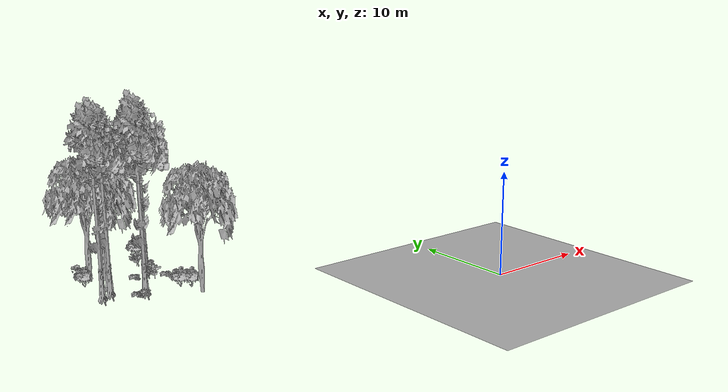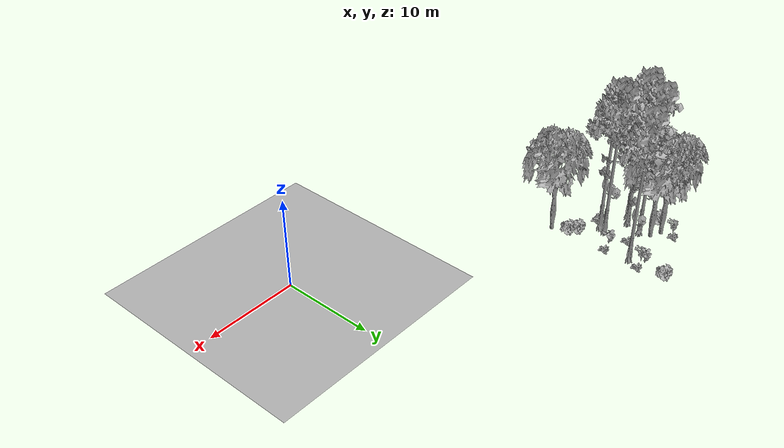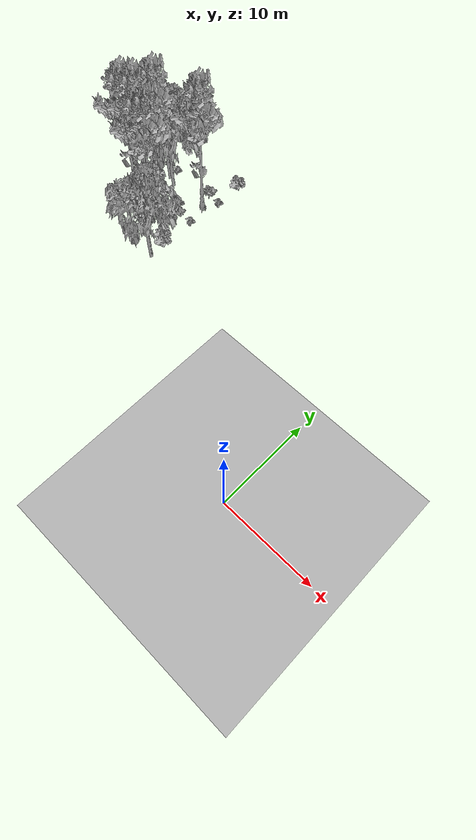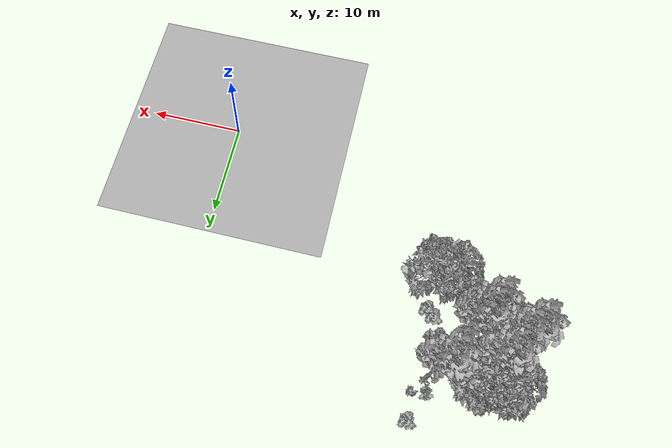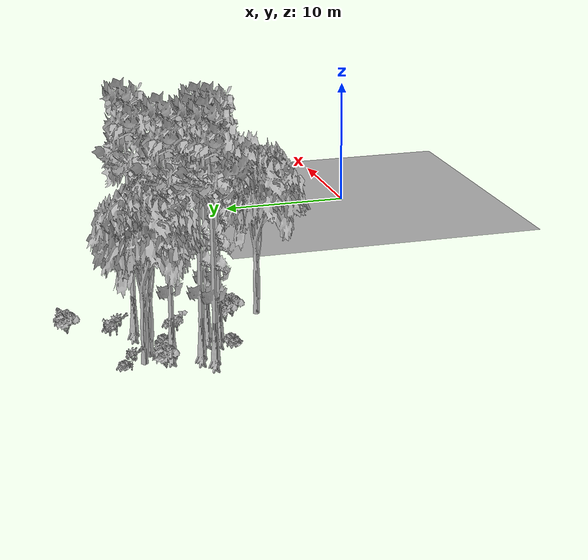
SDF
<sdf version="1.7">
 <world name="default">
  <model name="ground_plane">
   <static>1</static>
   <link name="link">
    <collision name="collision">
     <pose>-50 0 0 0 -0 0</pose>
     <geometry><plane><normal>0 0 1</normal><size>80 80</size></plane></geometry>
     <surface><contact><ode><min_depth>0.01</min_depth><max_vel>0</max_vel></ode></contact></surface>
    </collision>
    <visual name="grass">
     <cast_shadows>0</cast_shadows>
     <geometry>
      <mesh>
       <scale>0.46714285714285714 0.46714285714285714 0.1</scale>
       <uri>file://grass_plane/meshes/grass_plane.dae</uri>
      </mesh>
     </geometry>
    </visual>
   </link>
  </model>
  <model name="Tree 60">
   <static>1</static>
   <pose>-29.933595814193534 22.340400095195974 0 1.57079 -0 0</pose>
   <link name="link">
    <collision name="collision">
     <geometry><mesh><scale>3.5 5 3.5</scale><uri>model://tree_2/meshes/tree_2.obj</uri></mesh></geometry>
    </collision>
    <visual name="visual">
     <geometry><mesh><scale>3.5 5 3.5</scale><uri>model://tree_2/meshes/tree_2.obj</uri></mesh></geometry>
    </visual>
   </link>
  </model>
  <model name="Tree 129">
   <static>1</static>
   <pose>-25.438994015074442 22.554924213535358 0 1.57079 -0 0</pose>
   <link name="link">
    <collision name="collision">
     <geometry><mesh><scale>3.5 5 3.5</scale><uri>model://tree_9/meshes/tree_9.obj</uri></mesh></geometry>
    </collision>
    <visual name="visual">
     <geometry><mesh><scale>3.5 5 3.5</scale><uri>model://tree_9/meshes/tree_9.obj</uri></mesh></geometry>
    </visual>
   </link>
  </model>
  <model name="Tree 191">
   <static>1</static>
   <pose>-28.14081361864796 17.377886855464695 0 1.57079 -0 0</pose>
   <link name="link">
    <collision name="collision">
     <geometry><mesh><scale>3.5 5 3.5</scale><uri>model://tree_9/meshes/tree_9.obj</uri></mesh></geometry>
    </collision>
    <visual name="visual">
     <geometry><mesh><scale>3.5 5 3.5</scale><uri>model://tree_9/meshes/tree_9.obj</uri></mesh></geometry>
    </visual>
   </link>
  </model>
  <model name="Tree 217">
   <static>1</static>
   <pose>-30.745424111428278 19.164827419781936 0 1.57079 -0 0</pose>
   <link name="link">
    <collision name="collision">
     <geometry><mesh><scale>3.5 5 3.5</scale><uri>model://tree_9/meshes/tree_9.obj</uri></mesh></geometry>
    </collision>
    <visual name="visual">
     <geometry><mesh><scale>3.5 5 3.5</scale><uri>model://tree_9/meshes/tree_9.obj</uri></mesh></geometry>
    </visual>
   </link>
  </model>
  <model name="Tree 234">
   <static>1</static>
   <pose>-31.818582218465355 18.5193978615402 0 1.57079 -0 0</pose>
   <link name="link">
    <collision name="collision">
     <geometry><mesh><scale>3.5 5 3.5</scale><uri>model://tree_9/meshes/tree_9.obj</uri></mesh></geometry>
    </collision>
    <visual name="visual">
     <geometry><mesh><scale>3.5 5 3.5</scale><uri>model://tree_9/meshes/tree_9.obj</uri></mesh></geometry>
    </visual>
   </link>
  </model>
  <model name="Tree 249">
   <static>1</static>
   <pose>-27.845555887222844 18.129548656367888 0 1.57079 -0 0</pose>
   <link name="link">
    <collision name="collision">
     <geometry><mesh><scale>3.5 5 3.5</scale><uri>model://tree_9/meshes/tree_9.obj</uri></mesh></geometry>
    </collision>
    <visual name="visual">
     <geometry><mesh><scale>3.5 5 3.5</scale><uri>model://tree_9/meshes/tree_9.obj</uri></mesh></geometry>
    </visual>
   </link>
  </model>
  <model name="Tree 365">
   <static>1</static>
   <pose>-30.084941779495747 20.9719156938165 0 1.57079 -0 0</pose>
   <link name="link">
    <collision name="collision">
     <geometry><mesh><scale>3.5 5 3.5</scale><uri>model://tree_9/meshes/tree_9.obj</uri></mesh></geometry>
    </collision>
    <visual name="visual">
     <geometry><mesh><scale>3.5 5 3.5</scale><uri>model://tree_9/meshes/tree_9.obj</uri></mesh></geometry>
    </visual>
   </link>
  </model>
  <model name="Tree 498">
   <static>1</static>
   <pose>-31.097145230640933 22.909556660429416 0 1.57079 -0 0</pose>
   <link name="link">
    <collision name="collision">
     <geometry><mesh><scale>3.5 5 3.5</scale><uri>model://tree_2/meshes/tree_2.obj</uri></mesh></geometry>
    </collision>
    <visual name="visual">
     <geometry><mesh><scale>3.5 5 3.5</scale><uri>model://tree_2/meshes/tree_2.obj</uri></mesh></geometry>
    </visual>
   </link>
  </model>
  <model name="Tree 557">
   <static>1</static>
   <pose>-24.389510997139666 13.833752780145574 0 1.57079 -0 0</pose>
   <link name="link">
    <collision name="collision">
     <geometry><mesh><scale>3.5 5 3.5</scale><uri>model://tree_2/meshes/tree_2.obj</uri></mesh></geometry>
    </collision>
    <visual name="visual">
     <geometry><mesh><scale>3.5 5 3.5</scale><uri>model://tree_2/meshes/tree_2.obj</uri></mesh></geometry>
    </visual>
   </link>
  </model>
  <model name="Bush 30">
   <static>1</static>
   <pose>-25.99408644991815 19.77953957476153 0 1.57079 -0 0</pose>
   <link name="link">
    <collision name="collision">
     <geometry><mesh><scale>2 2 2</scale><uri>model://bush_0/meshes/bush_0.obj</uri></mesh></geometry>
     <surface><contact><collide_without_contact>false</collide_without_contact></contact></surface>
    </collision>
    <visual name="visual">
     <geometry><mesh><scale>2 2 2</scale><uri>model://bush_0/meshes/bush_0.obj</uri></mesh></geometry>
    </visual>
   </link>
  </model>
  <model name="Bush 56">
   <static>1</static>
   <pose>-29.392277794197227 16.614412365177515 0 1.57079 -0 0</pose>
   <link name="link">
    <collision name="collision">
     <geometry><mesh><scale>2 2 2</scale><uri>model://bush_2/meshes/bush_2.obj</uri></mesh></geometry>
     <surface><contact><collide_without_contact>false</collide_without_contact></contact></surface>
    </collision>
    <visual name="visual">
     <geometry><mesh><scale>2 2 2</scale><uri>model://bush_2/meshes/bush_2.obj</uri></mesh></geometry>
    </visual>
   </link>
  </model>
  <model name="Bush 67">
   <static>1</static>
   <pose>-27.485895819713527 20.98626949798215 0 1.57079 -0 0</pose>
   <link name="link">
    <collision name="collision">
     <geometry><mesh><scale>2 2 2</scale><uri>model://bush_2/meshes/bush_2.obj</uri></mesh></geometry>
     <surface><contact><collide_without_contact>false</collide_without_contact></contact></surface>
    </collision>
    <visual name="visual">
     <geometry><mesh><scale>2 2 2</scale><uri>model://bush_2/meshes/bush_2.obj</uri></mesh></geometry>
    </visual>
   </link>
  </model>
  <model name="Bush 156">
   <static>1</static>
   <pose>-31.81104020769008 23.922070721178763 0 1.57079 -0 0</pose>
   <link name="link">
    <collision name="collision">
     <geometry><mesh><scale>2 2 2</scale><uri>model://bush_5/meshes/bush_5.obj</uri></mesh></geometry>
     <surface><contact><collide_without_contact>false</collide_without_contact></contact></surface>
    </collision>
    <visual name="visual">
     <geometry><mesh><scale>2 2 2</scale><uri>model://bush_5/meshes/bush_5.obj</uri></mesh></geometry>
    </visual>
   </link>
  </model>
  <model name="Bush 168">
   <static>1</static>
   <pose>-24.37903212384893 26.8434922958795 0 1.57079 -0 0</pose>
   <link name="link">
    <collision name="collision">
     <geometry><mesh><scale>2 2 2</scale><uri>model://bush_1/meshes/bush_1.obj</uri></mesh></geometry>
     <surface><contact><collide_without_contact>false</collide_without_contact></contact></surface>
    </collision>
    <visual name="visual">
     <geometry><mesh><scale>2 2 2</scale><uri>model://bush_1/meshes/bush_1.obj</uri></mesh></geometry>
    </visual>
   </link>
  </model>
  <model name="Bush 180">
   <static>1</static>
   <pose>-28.574931429807165 16.693809483918038 0 1.57079 -0 0</pose>
   <link name="link">
    <collision name="collision">
     <geometry><mesh><scale>2 2 2</scale><uri>model://bush_2/meshes/bush_2.obj</uri></mesh></geometry>
     <surface><contact><collide_without_contact>false</collide_without_contact></contact></surface>
    </collision>
    <visual name="visual">
     <geometry><mesh><scale>2 2 2</scale><uri>model://bush_2/meshes/bush_2.obj</uri></mesh></geometry>
    </visual>
   </link>
  </model>
  <model name="Bush 189">
   <static>1</static>
   <pose>-25.62042523960439 23.779173101759127 0 1.57079 -0 0</pose>
   <link name="link">
    <collision name="collision">
     <geometry><mesh><scale>2 2 2</scale><uri>model://bush_5/meshes/bush_5.obj</uri></mesh></geometry>
     <surface><contact><collide_without_contact>false</collide_without_contact></contact></surface>
    </collision>
    <visual name="visual">
     <geometry><mesh><scale>2 2 2</scale><uri>model://bush_5/meshes/bush_5.obj</uri></mesh></geometry>
    </visual>
   </link>
  </model>
  <model name="Bush 277">
   <static>1</static>
   <pose>-25.19799451433762 16.257368037959232 0 1.57079 -0 0</pose>
   <link name="link">
    <collision name="collision">
     <geometry><mesh><scale>2 2 2</scale><uri>model://bush_1/meshes/bush_1.obj</uri></mesh></geometry>
     <surface><contact><collide_without_contact>false</collide_without_contact></contact></surface>
    </collision>
    <visual name="visual">
     <geometry><mesh><scale>2 2 2</scale><uri>model://bush_1/meshes/bush_1.obj</uri></mesh></geometry>
    </visual>
   </link>
  </model>
  <model name="Bush 292">
   <static>1</static>
   <pose>-24.437075999109858 15.591291262177826 0 1.57079 -0 0</pose>
   <link name="link">
    <collision name="collision">
     <geometry><mesh><scale>2 2 2</scale><uri>model://bush_1/meshes/bush_1.obj</uri></mesh></geometry>
     <surface><contact><collide_without_contact>false</collide_without_contact></contact></surface>
    </collision>
    <visual name="visual">
     <geometry><mesh><scale>2 2 2</scale><uri>model://bush_1/meshes/bush_1.obj</uri></mesh></geometry>
    </visual>
   </link>
  </model>
  <model name="Bush 364">
   <static>1</static>
   <pose>-24.764620009822906 19.98565671972979 0 1.57079 -0 0</pose>
   <link name="link">
    <collision name="collision">
     <geometry><mesh><scale>2 2 2</scale><uri>model://bush_2/meshes/bush_2.obj</uri></mesh></geometry>
     <surface><contact><collide_without_contact>false</collide_without_contact></contact></surface>
    </collision>
    <visual name="visual">
     <geometry><mesh><scale>2 2 2</scale><uri>model://bush_2/meshes/bush_2.obj</uri></mesh></geometry>
    </visual>
   </link>
  </model>
  <model name="Bush 455">
   <static>1</static>
   <pose>-24.42514183940998 24.004818255788663 0 1.57079 -0 0</pose>
   <link name="link">
    <collision name="collision">
     <geometry><mesh><scale>2 2 2</scale><uri>model://bush_2/meshes/bush_2.obj</uri></mesh></geometry>
     <surface><contact><collide_without_contact>false</collide_without_contact></contact></surface>
    </collision>
    <visual name="visual">
     <geometry><mesh><scale>2 2 2</scale><uri>model://bush_2/meshes/bush_2.obj</uri></mesh></geometry>
    </visual>
   </link>
  </model>
  <model name="Bush 482">
   <static>1</static>
   <pose>-31.22912898069194 24.237206193218242 0 1.57079 -0 0</pose>
   <link name="link">
    <collision name="collision">
     <geometry><mesh><scale>2 2 2</scale><uri>model://bush_2/meshes/bush_2.obj</uri></mesh></geometry>
     <surface><contact><collide_without_contact>false</collide_without_contact></contact></surface>
    </collision>
    <visual name="visual">
     <geometry><mesh><scale>2 2 2</scale><uri>model://bush_2/meshes/bush_2.obj</uri></mesh></geometry>
    </visual>
   </link>
  </model>
  <model name="Bush 539">
   <static>1</static>
   <pose>-25.61151815587278 24.21833969135905 0 1.57079 -0 0</pose>
   <link name="link">
    <collision name="collision">
     <geometry><mesh><scale>2 2 2</scale><uri>model://bush_0/meshes/bush_0.obj</uri></mesh></geometry>
     <surface><contact><collide_without_contact>false</collide_without_contact></contact></surface>
    </collision>
    <visual name="visual">
     <geometry><mesh><scale>2 2 2</scale><uri>model://bush_0/meshes/bush_0.obj</uri></mesh></geometry>
    </visual>
   </link>
  </model>
  <model name="Bush 560">
   <static>1</static>
   <pose>-32.05876154771776 21.747344903621347 0 1.57079 -0 0</pose>
   <link name="link">
    <collision name="collision">
     <geometry><mesh><scale>2 2 2</scale><uri>model://bush_1/meshes/bush_1.obj</uri></mesh></geometry>
     <surface><contact><collide_without_contact>false</collide_without_contact></contact></surface>
    </collision>
    <visual name="visual">
     <geometry><mesh><scale>2 2 2</scale><uri>model://bush_1/meshes/bush_1.obj</uri></mesh></geometry>
    </visual>
   </link>
  </model>
 </world>
</sdf>
